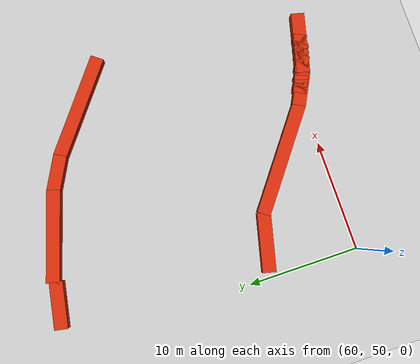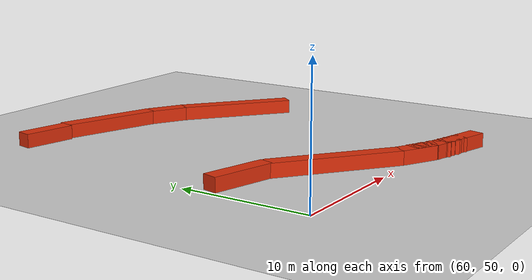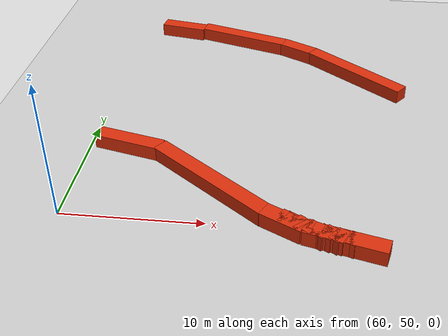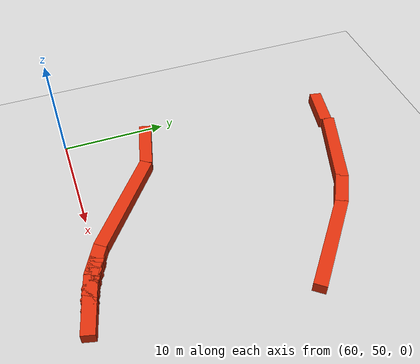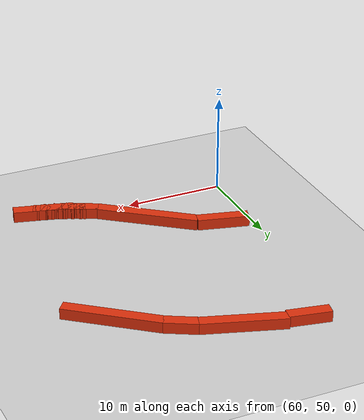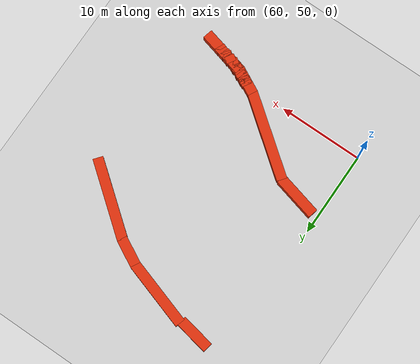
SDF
<sdf version="1.6">
 <world name="default">
  <include><uri>model://ground_plane</uri></include>
  <model name="track_inner_guardrail">
   <static>true</static>
   <link name="seg_088">
    <pose>79.51 48.50 0.55 0 0 2.7158</pose>
    <collision name="col"><geometry><box><size>0.64 1.20 1.1</size></box></geometry></collision>
    <visual name="vis">
     <geometry><box><size>0.64 1.20 1.1</size></box></geometry>
     <material>
      <ambient>0.35 0.08 0.02 1</ambient>
      <diffuse>0.85 0.18 0.04 1</diffuse>
      <specular>0.2 0.2 0.2 1</specular>
     </material>
    </visual>
   </link>
   <link name="seg_089">
    <pose>78.79 48.66 0.55 0 0 2.7158</pose>
    <collision name="col"><geometry><box><size>0.64 1.20 1.1</size></box></geometry></collision>
    <visual name="vis">
     <geometry><box><size>0.64 1.20 1.1</size></box></geometry>
     <material>
      <ambient>0.35 0.08 0.02 1</ambient>
      <diffuse>0.85 0.18 0.04 1</diffuse>
      <specular>0.2 0.2 0.2 1</specular>
     </material>
    </visual>
   </link>
   <link name="seg_090">
    <pose>78.02 48.88 0.55 0 0 2.6038</pose>
    <collision name="col"><geometry><box><size>0.80 1.20 1.1</size></box></geometry></collision>
    <visual name="vis">
     <geometry><box><size>0.80 1.20 1.1</size></box></geometry>
     <material>
      <ambient>0.35 0.08 0.02 1</ambient>
      <diffuse>0.85 0.18 0.04 1</diffuse>
      <specular>0.2 0.2 0.2 1</specular>
     </material>
    </visual>
   </link>
   <link name="seg_091">
    <pose>77.25 49.11 0.55 0 0 2.7158</pose>
    <collision name="col"><geometry><box><size>0.64 1.20 1.1</size></box></geometry></collision>
    <visual name="vis">
     <geometry><box><size>0.64 1.20 1.1</size></box></geometry>
     <material>
      <ambient>0.35 0.08 0.02 1</ambient>
      <diffuse>0.85 0.18 0.04 1</diffuse>
      <specular>0.2 0.2 0.2 1</specular>
     </material>
    </visual>
   </link>
   <link name="seg_092">
    <pose>76.78 49.32 0.55 0 0 2.7158</pose>
    <collision name="col"><geometry><box><size>0.64 1.20 1.1</size></box></geometry></collision>
    <visual name="vis">
     <geometry><box><size>0.64 1.20 1.1</size></box></geometry>
     <material>
      <ambient>0.35 0.08 0.02 1</ambient>
      <diffuse>0.85 0.18 0.04 1</diffuse>
      <specular>0.2 0.2 0.2 1</specular>
     </material>
    </visual>
   </link>
   <link name="seg_093">
    <pose>76.24 49.44 0.55 0 0 2.2710</pose>
    <collision name="col"><geometry><box><size>0.30 1.20 1.1</size></box></geometry></collision>
    <visual name="vis">
     <geometry><box><size>0.30 1.20 1.1</size></box></geometry>
     <material>
      <ambient>0.35 0.08 0.02 1</ambient>
      <diffuse>0.85 0.18 0.04 1</diffuse>
      <specular>0.2 0.2 0.2 1</specular>
     </material>
    </visual>
   </link>
   <link name="seg_094">
    <pose>76.03 49.64 0.55 0 0 2.7905</pose>
    <collision name="col"><geometry><box><size>0.41 1.20 1.1</size></box></geometry></collision>
    <visual name="vis">
     <geometry><box><size>0.41 1.20 1.1</size></box></geometry>
     <material>
      <ambient>0.35 0.08 0.02 1</ambient>
      <diffuse>0.85 0.18 0.04 1</diffuse>
      <specular>0.2 0.2 0.2 1</specular>
     </material>
    </visual>
   </link>
   <link name="seg_095">
    <pose>75.76 49.74 0.55 0 0 2.7905</pose>
    <collision name="col"><geometry><box><size>0.41 1.20 1.1</size></box></geometry></collision>
    <visual name="vis">
     <geometry><box><size>0.41 1.20 1.1</size></box></geometry>
     <material>
      <ambient>0.35 0.08 0.02 1</ambient>
      <diffuse>0.85 0.18 0.04 1</diffuse>
      <specular>0.2 0.2 0.2 1</specular>
     </material>
    </visual>
   </link>
   <link name="seg_096">
    <pose>75.49 49.88 0.55 0 0 2.5918</pose>
    <collision name="col"><geometry><box><size>0.45 1.20 1.1</size></box></geometry></collision>
    <visual name="vis">
     <geometry><box><size>0.45 1.20 1.1</size></box></geometry>
     <material>
      <ambient>0.35 0.08 0.02 1</ambient>
      <diffuse>0.85 0.18 0.04 1</diffuse>
      <specular>0.2 0.2 0.2 1</specular>
     </material>
    </visual>
   </link>
   <link name="seg_097">
    <pose>75.21 50.01 0.55 0 0 2.7905</pose>
    <collision name="col"><geometry><box><size>0.41 1.20 1.1</size></box></geometry></collision>
    <visual name="vis">
     <geometry><box><size>0.41 1.20 1.1</size></box></geometry>
     <material>
      <ambient>0.35 0.08 0.02 1</ambient>
      <diffuse>0.85 0.18 0.04 1</diffuse>
      <specular>0.2 0.2 0.2 1</specular>
     </material>
    </visual>
   </link>
   <link name="seg_098">
    <pose>74.94 50.15 0.55 0 0 2.5918</pose>
    <collision name="col"><geometry><box><size>0.45 1.20 1.1</size></box></geometry></collision>
    <visual name="vis">
     <geometry><box><size>0.45 1.20 1.1</size></box></geometry>
     <material>
      <ambient>0.35 0.08 0.02 1</ambient>
      <diffuse>0.85 0.18 0.04 1</diffuse>
      <specular>0.2 0.2 0.2 1</specular>
     </material>
    </visual>
   </link>
   <link name="seg_099">
    <pose>75.33 49.95 0.55 0 0 -0.6455</pose>
    <collision name="col"><geometry><box><size>0.76 1.20 1.1</size></box></geometry></collision>
    <visual name="vis">
     <geometry><box><size>0.76 1.20 1.1</size></box></geometry>
     <material>
      <ambient>0.35 0.08 0.02 1</ambient>
      <diffuse>0.85 0.18 0.04 1</diffuse>
      <specular>0.2 0.2 0.2 1</specular>
     </material>
    </visual>
   </link>
   <link name="seg_100">
    <pose>76.09 49.62 0.55 0 0 -0.6455</pose>
    <collision name="col"><geometry><box><size>0.76 1.20 1.1</size></box></geometry></collision>
    <visual name="vis">
     <geometry><box><size>0.76 1.20 1.1</size></box></geometry>
     <material>
      <ambient>0.35 0.08 0.02 1</ambient>
      <diffuse>0.85 0.18 0.04 1</diffuse>
      <specular>0.2 0.2 0.2 1</specular>
     </material>
    </visual>
   </link>
   <link name="seg_101">
    <pose>76.84 49.29 0.55 0 0 -0.6455</pose>
    <collision name="col"><geometry><box><size>0.64 1.20 1.1</size></box></geometry></collision>
    <visual name="vis">
     <geometry><box><size>0.64 1.20 1.1</size></box></geometry>
     <material>
      <ambient>0.35 0.08 0.02 1</ambient>
      <diffuse>0.85 0.18 0.04 1</diffuse>
      <specular>0.2 0.2 0.2 1</specular>
     </material>
    </visual>
   </link>
   <link name="seg_102">
    <pose>77.59 48.97 0.55 0 0 -0.6455</pose>
    <collision name="col"><geometry><box><size>0.76 1.20 1.1</size></box></geometry></collision>
    <visual name="vis">
     <geometry><box><size>0.76 1.20 1.1</size></box></geometry>
     <material>
      <ambient>0.35 0.08 0.02 1</ambient>
      <diffuse>0.85 0.18 0.04 1</diffuse>
      <specular>0.2 0.2 0.2 1</specular>
     </material>
    </visual>
   </link>
   <link name="seg_103">
    <pose>78.59 48.70 0.55 0 0 -0.6455</pose>
    <collision name="col"><geometry><box><size>0.76 1.20 1.1</size></box></geometry></collision>
    <visual name="vis">
     <geometry><box><size>0.76 1.20 1.1</size></box></geometry>
     <material>
      <ambient>0.35 0.08 0.02 1</ambient>
      <diffuse>0.85 0.18 0.04 1</diffuse>
      <specular>0.2 0.2 0.2 1</specular>
     </material>
    </visual>
   </link>
   <link name="seg_116">
    <pose>79.08 48.62 0.55 0 0 2.8950</pose>
    <collision name="col"><geometry><box><size>5.51 1.20 1.1</size></box></geometry></collision>
    <visual name="vis">
     <geometry><box><size>5.51 1.20 1.1</size></box></geometry>
     <material>
      <ambient>0.35 0.08 0.02 1</ambient>
      <diffuse>0.85 0.18 0.04 1</diffuse>
      <specular>0.2 0.2 0.2 1</specular>
     </material>
    </visual>
   </link>
   <link name="seg_117">
    <pose>75.08 49.98 0.55 0 0 2.6647</pose>
    <collision name="col"><geometry><box><size>3.11 1.20 1.1</size></box></geometry></collision>
    <visual name="vis">
     <geometry><box><size>3.11 1.20 1.1</size></box></geometry>
     <material>
      <ambient>0.35 0.08 0.02 1</ambient>
      <diffuse>0.85 0.18 0.04 1</diffuse>
      <specular>0.2 0.2 0.2 1</specular>
     </material>
    </visual>
   </link>
   <link name="seg_118">
    <pose>69.66 53.78 0.55 0 0 2.4897</pose>
    <collision name="col"><geometry><box><size>10.41 1.20 1.1</size></box></geometry></collision>
    <visual name="vis">
     <geometry><box><size>10.41 1.20 1.1</size></box></geometry>
     <material>
      <ambient>0.35 0.08 0.02 1</ambient>
      <diffuse>0.85 0.18 0.04 1</diffuse>
      <specular>0.2 0.2 0.2 1</specular>
     </material>
    </visual>
   </link>
   <link name="seg_119">
    <pose>63.11 57.52 0.55 0 0 2.8980</pose>
    <collision name="col"><geometry><box><size>5.21 1.20 1.1</size></box></geometry></collision>
    <visual name="vis">
     <geometry><box><size>5.21 1.20 1.1</size></box></geometry>
     <material>
      <ambient>0.35 0.08 0.02 1</ambient>
      <diffuse>0.85 0.18 0.04 1</diffuse>
      <specular>0.2 0.2 0.2 1</specular>
     </material>
    </visual>
   </link>
  </model>
  <model name="track_outer_guardrail">
   <static>true</static>
   <link name="seg_076">
    <pose>79.93 69.46 0.55 0 0 2.4746</pose>
    <collision name="col"><geometry><box><size>9.56 1.20 1.1</size></box></geometry></collision>
    <visual name="vis">
     <geometry><box><size>9.56 1.20 1.1</size></box></geometry>
     <material>
      <ambient>0.35 0.08 0.02 1</ambient>
      <diffuse>0.85 0.18 0.04 1</diffuse>
      <specular>0.2 0.2 0.2 1</specular>
     </material>
    </visual>
   </link>
   <link name="seg_077">
    <pose>74.84 73.12 0.55 0 0 2.6485</pose>
    <collision name="col"><geometry><box><size>3.26 1.20 1.1</size></box></geometry></collision>
    <visual name="vis">
     <geometry><box><size>3.26 1.20 1.1</size></box></geometry>
     <material>
      <ambient>0.35 0.08 0.02 1</ambient>
      <diffuse>0.85 0.18 0.04 1</diffuse>
      <specular>0.2 0.2 0.2 1</specular>
     </material>
    </visual>
   </link>
   <link name="seg_078">
    <pose>69.63 75.08 0.55 0 0 2.8340</pose>
    <collision name="col"><geometry><box><size>8.16 1.20 1.1</size></box></geometry></collision>
    <visual name="vis">
     <geometry><box><size>8.16 1.20 1.1</size></box></geometry>
     <material>
      <ambient>0.35 0.08 0.02 1</ambient>
      <diffuse>0.85 0.18 0.04 1</diffuse>
      <specular>0.2 0.2 0.2 1</specular>
     </material>
    </visual>
   </link>
   <link name="seg_079">
    <pose>63.78 76.42 0.55 0 0 2.9547</pose>
    <collision name="col"><geometry><box><size>4.10 1.20 1.1</size></box></geometry></collision>
    <visual name="vis">
     <geometry><box><size>4.10 1.20 1.1</size></box></geometry>
     <material>
      <ambient>0.35 0.08 0.02 1</ambient>
      <diffuse>0.85 0.18 0.04 1</diffuse>
      <specular>0.2 0.2 0.2 1</specular>
     </material>
    </visual>
   </link>
  </model>
 </world>
</sdf>
